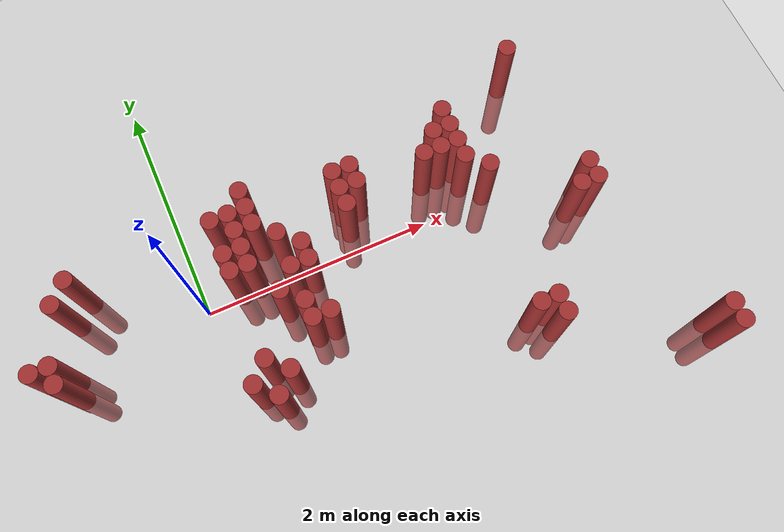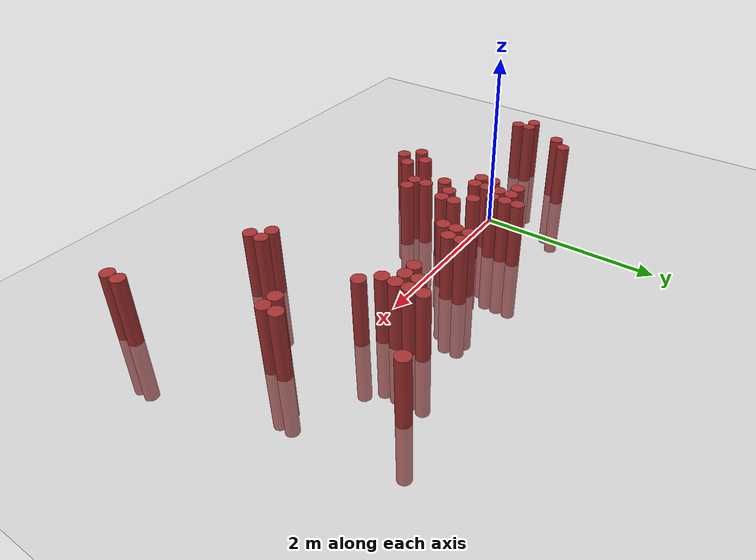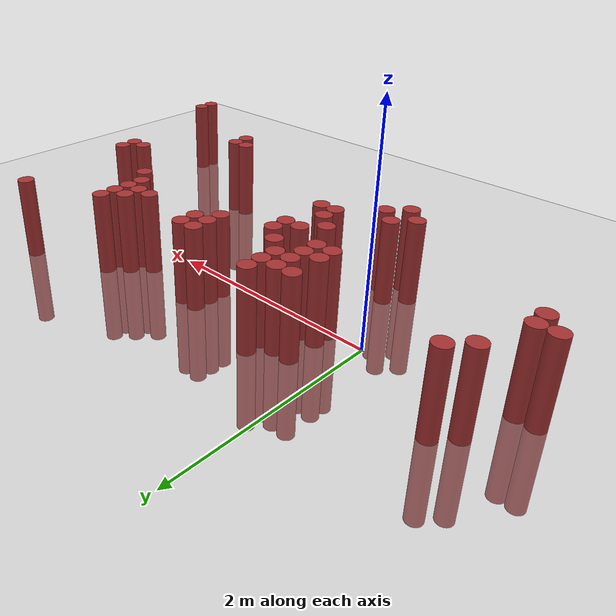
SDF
<sdf version="1.6">
 <world name="default">
  <model name="ground_plane">
   <static>1</static>
   <link name="link">
    <collision name="collision">
     <geometry><plane><normal>0 0 1</normal><size>100 100</size></plane></geometry>
     <surface><friction><ode><mu>100</mu><mu2>50</mu2></ode></friction></surface>
    </collision>
    <visual name="visual">
     <cast_shadows>0</cast_shadows>
     <geometry><plane><normal>0 0 1</normal><size>100 100</size></plane></geometry>
     <material>
      <script><uri>file://media/materials/scripts/gazebo.material</uri><name>Gazebo/Grey</name></script>
     </material>
    </visual>
   </link>
  </model>
  <model name="unit_cylinder_312">
   <static>1</static>
   <pose>-1.325000 -0.125000 0.000000 0.000000 0.000000 0.000000</pose>
   <link name="link">
    <inertial>
     <mass>1</mass>
     <inertia><ixx>0.145833</ixx><ixy>0</ixy><ixz>0</ixz><iyy>0.145833</iyy><iyz>0</iyz><izz>0.125</izz></inertia>
    </inertial>
    <collision name="collision">
     <geometry><cylinder><radius>0.075000</radius><length>1.5</length></cylinder></geometry>
    </collision>
    <visual name="visual">
     <geometry><cylinder><radius>0.075000</radius><length>1.5</length></cylinder></geometry>
     <material>
      <ambient>0.648000 0.192000 0.192000 1</ambient>
      <diffuse>0.648000 0.192000 0.192000 1</diffuse>
     </material>
     <material>
      <script><name>Gazebo/Grey</name><uri>file://media/materials/scripts/gazebo.material</uri></script>
     </material>
    </visual>
   </link>
  </model>
  <model name="unit_cylinder_318">
   <static>1</static>
   <pose>-1.175000 -0.275000 0.000000 0.000000 0.000000 0.000000</pose>
   <link name="link">
    <inertial>
     <mass>1</mass>
     <inertia><ixx>0.145833</ixx><ixy>0</ixy><ixz>0</ixz><iyy>0.145833</iyy><iyz>0</iyz><izz>0.125</izz></inertia>
    </inertial>
    <collision name="collision">
     <geometry><cylinder><radius>0.075000</radius><length>1.5</length></cylinder></geometry>
    </collision>
    <visual name="visual">
     <geometry><cylinder><radius>0.075000</radius><length>1.5</length></cylinder></geometry>
     <material>
      <ambient>0.648000 0.192000 0.192000 1</ambient>
      <diffuse>0.648000 0.192000 0.192000 1</diffuse>
     </material>
     <material>
      <script><name>Gazebo/Grey</name><uri>file://media/materials/scripts/gazebo.material</uri></script>
     </material>
    </visual>
   </link>
  </model>
  <model name="unit_cylinder_319">
   <static>1</static>
   <pose>-1.175000 -0.125000 0.000000 0.000000 0.000000 0.000000</pose>
   <link name="link">
    <inertial>
     <mass>1</mass>
     <inertia><ixx>0.145833</ixx><ixy>0</ixy><ixz>0</ixz><iyy>0.145833</iyy><iyz>0</iyz><izz>0.125</izz></inertia>
    </inertial>
    <collision name="collision">
     <geometry><cylinder><radius>0.075000</radius><length>1.5</length></cylinder></geometry>
    </collision>
    <visual name="visual">
     <geometry><cylinder><radius>0.075000</radius><length>1.5</length></cylinder></geometry>
     <material>
      <ambient>0.648000 0.192000 0.192000 1</ambient>
      <diffuse>0.648000 0.192000 0.192000 1</diffuse>
     </material>
     <material>
      <script><name>Gazebo/Grey</name><uri>file://media/materials/scripts/gazebo.material</uri></script>
     </material>
    </visual>
   </link>
  </model>
  <model name="unit_cylinder_325">
   <static>1</static>
   <pose>-1.025000 0.325000 0.000000 0.000000 0.000000 0.000000</pose>
   <link name="link">
    <inertial>
     <mass>1</mass>
     <inertia><ixx>0.145833</ixx><ixy>0</ixy><ixz>0</ixz><iyy>0.145833</iyy><iyz>0</iyz><izz>0.125</izz></inertia>
    </inertial>
    <collision name="collision">
     <geometry><cylinder><radius>0.075000</radius><length>1.5</length></cylinder></geometry>
    </collision>
    <visual name="visual">
     <geometry><cylinder><radius>0.075000</radius><length>1.5</length></cylinder></geometry>
     <material>
      <ambient>0.648000 0.192000 0.192000 1</ambient>
      <diffuse>0.648000 0.192000 0.192000 1</diffuse>
     </material>
     <material>
      <script><name>Gazebo/Grey</name><uri>file://media/materials/scripts/gazebo.material</uri></script>
     </material>
    </visual>
   </link>
  </model>
  <model name="unit_cylinder_330">
   <static>1</static>
   <pose>-0.875000 0.475000 0.000000 0.000000 0.000000 0.000000</pose>
   <link name="link">
    <inertial>
     <mass>1</mass>
     <inertia><ixx>0.145833</ixx><ixy>0</ixy><ixz>0</ixz><iyy>0.145833</iyy><iyz>0</iyz><izz>0.125</izz></inertia>
    </inertial>
    <collision name="collision">
     <geometry><cylinder><radius>0.075000</radius><length>1.5</length></cylinder></geometry>
    </collision>
    <visual name="visual">
     <geometry><cylinder><radius>0.075000</radius><length>1.5</length></cylinder></geometry>
     <material>
      <ambient>0.648000 0.192000 0.192000 1</ambient>
      <diffuse>0.648000 0.192000 0.192000 1</diffuse>
     </material>
     <material>
      <script><name>Gazebo/Grey</name><uri>file://media/materials/scripts/gazebo.material</uri></script>
     </material>
    </visual>
   </link>
  </model>
  <model name="unit_cylinder_356">
   <static>1</static>
   <pose>0.175000 -0.875000 0.000000 0.000000 0.000000 0.000000</pose>
   <link name="link">
    <inertial>
     <mass>1</mass>
     <inertia><ixx>0.145833</ixx><ixy>0</ixy><ixz>0</ixz><iyy>0.145833</iyy><iyz>0</iyz><izz>0.125</izz></inertia>
    </inertial>
    <collision name="collision">
     <geometry><cylinder><radius>0.075000</radius><length>1.5</length></cylinder></geometry>
    </collision>
    <visual name="visual">
     <geometry><cylinder><radius>0.075000</radius><length>1.5</length></cylinder></geometry>
     <material>
      <ambient>0.648000 0.192000 0.192000 1</ambient>
      <diffuse>0.648000 0.192000 0.192000 1</diffuse>
     </material>
     <material>
      <script><name>Gazebo/Grey</name><uri>file://media/materials/scripts/gazebo.material</uri></script>
     </material>
    </visual>
   </link>
  </model>
  <model name="unit_cylinder_360">
   <static>1</static>
   <pose>0.325000 -1.025000 0.000000 0.000000 0.000000 0.000000</pose>
   <link name="link">
    <inertial>
     <mass>1</mass>
     <inertia><ixx>0.145833</ixx><ixy>0</ixy><ixz>0</ixz><iyy>0.145833</iyy><iyz>0</iyz><izz>0.125</izz></inertia>
    </inertial>
    <collision name="collision">
     <geometry><cylinder><radius>0.075000</radius><length>1.5</length></cylinder></geometry>
    </collision>
    <visual name="visual">
     <geometry><cylinder><radius>0.075000</radius><length>1.5</length></cylinder></geometry>
     <material>
      <ambient>0.648000 0.192000 0.192000 1</ambient>
      <diffuse>0.648000 0.192000 0.192000 1</diffuse>
     </material>
     <material>
      <script><name>Gazebo/Grey</name><uri>file://media/materials/scripts/gazebo.material</uri></script>
     </material>
    </visual>
   </link>
  </model>
  <model name="unit_cylinder_361">
   <static>1</static>
   <pose>0.325000 -0.725000 0.000000 0.000000 0.000000 0.000000</pose>
   <link name="link">
    <inertial>
     <mass>1</mass>
     <inertia><ixx>0.145833</ixx><ixy>0</ixy><ixz>0</ixz><iyy>0.145833</iyy><iyz>0</iyz><izz>0.125</izz></inertia>
    </inertial>
    <collision name="collision">
     <geometry><cylinder><radius>0.075000</radius><length>1.5</length></cylinder></geometry>
    </collision>
    <visual name="visual">
     <geometry><cylinder><radius>0.075000</radius><length>1.5</length></cylinder></geometry>
     <material>
      <ambient>0.648000 0.192000 0.192000 1</ambient>
      <diffuse>0.648000 0.192000 0.192000 1</diffuse>
     </material>
     <material>
      <script><name>Gazebo/Grey</name><uri>file://media/materials/scripts/gazebo.material</uri></script>
     </material>
    </visual>
   </link>
  </model>
  <model name="unit_cylinder_362">
   <static>1</static>
   <pose>0.325000 0.025000 0.000000 0.000000 0.000000 0.000000</pose>
   <link name="link">
    <inertial>
     <mass>1</mass>
     <inertia><ixx>0.145833</ixx><ixy>0</ixy><ixz>0</ixz><iyy>0.145833</iyy><iyz>0</iyz><izz>0.125</izz></inertia>
    </inertial>
    <collision name="collision">
     <geometry><cylinder><radius>0.075000</radius><length>1.5</length></cylinder></geometry>
    </collision>
    <visual name="visual">
     <geometry><cylinder><radius>0.075000</radius><length>1.5</length></cylinder></geometry>
     <material>
      <ambient>0.648000 0.192000 0.192000 1</ambient>
      <diffuse>0.648000 0.192000 0.192000 1</diffuse>
     </material>
     <material>
      <script><name>Gazebo/Grey</name><uri>file://media/materials/scripts/gazebo.material</uri></script>
     </material>
    </visual>
   </link>
  </model>
  <model name="unit_cylinder_363">
   <static>1</static>
   <pose>0.325000 0.175000 0.000000 0.000000 0.000000 0.000000</pose>
   <link name="link">
    <inertial>
     <mass>1</mass>
     <inertia><ixx>0.145833</ixx><ixy>0</ixy><ixz>0</ixz><iyy>0.145833</iyy><iyz>0</iyz><izz>0.125</izz></inertia>
    </inertial>
    <collision name="collision">
     <geometry><cylinder><radius>0.075000</radius><length>1.5</length></cylinder></geometry>
    </collision>
    <visual name="visual">
     <geometry><cylinder><radius>0.075000</radius><length>1.5</length></cylinder></geometry>
     <material>
      <ambient>0.648000 0.192000 0.192000 1</ambient>
      <diffuse>0.648000 0.192000 0.192000 1</diffuse>
     </material>
     <material>
      <script><name>Gazebo/Grey</name><uri>file://media/materials/scripts/gazebo.material</uri></script>
     </material>
    </visual>
   </link>
  </model>
  <model name="unit_cylinder_364">
   <static>1</static>
   <pose>0.325000 0.475000 0.000000 0.000000 0.000000 0.000000</pose>
   <link name="link">
    <inertial>
     <mass>1</mass>
     <inertia><ixx>0.145833</ixx><ixy>0</ixy><ixz>0</ixz><iyy>0.145833</iyy><iyz>0</iyz><izz>0.125</izz></inertia>
    </inertial>
    <collision name="collision">
     <geometry><cylinder><radius>0.075000</radius><length>1.5</length></cylinder></geometry>
    </collision>
    <visual name="visual">
     <geometry><cylinder><radius>0.075000</radius><length>1.5</length></cylinder></geometry>
     <material>
      <ambient>0.648000 0.192000 0.192000 1</ambient>
      <diffuse>0.648000 0.192000 0.192000 1</diffuse>
     </material>
     <material>
      <script><name>Gazebo/Grey</name><uri>file://media/materials/scripts/gazebo.material</uri></script>
     </material>
    </visual>
   </link>
  </model>
  <model name="unit_cylinder_367">
   <static>1</static>
   <pose>0.475000 -0.875000 0.000000 0.000000 0.000000 0.000000</pose>
   <link name="link">
    <inertial>
     <mass>1</mass>
     <inertia><ixx>0.145833</ixx><ixy>0</ixy><ixz>0</ixz><iyy>0.145833</iyy><iyz>0</iyz><izz>0.125</izz></inertia>
    </inertial>
    <collision name="collision">
     <geometry><cylinder><radius>0.075000</radius><length>1.5</length></cylinder></geometry>
    </collision>
    <visual name="visual">
     <geometry><cylinder><radius>0.075000</radius><length>1.5</length></cylinder></geometry>
     <material>
      <ambient>0.648000 0.192000 0.192000 1</ambient>
      <diffuse>0.648000 0.192000 0.192000 1</diffuse>
     </material>
     <material>
      <script><name>Gazebo/Grey</name><uri>file://media/materials/scripts/gazebo.material</uri></script>
     </material>
    </visual>
   </link>
  </model>
  <model name="unit_cylinder_368">
   <static>1</static>
   <pose>0.475000 0.025000 0.000000 0.000000 0.000000 0.000000</pose>
   <link name="link">
    <inertial>
     <mass>1</mass>
     <inertia><ixx>0.145833</ixx><ixy>0</ixy><ixz>0</ixz><iyy>0.145833</iyy><iyz>0</iyz><izz>0.125</izz></inertia>
    </inertial>
    <collision name="collision">
     <geometry><cylinder><radius>0.075000</radius><length>1.5</length></cylinder></geometry>
    </collision>
    <visual name="visual">
     <geometry><cylinder><radius>0.075000</radius><length>1.5</length></cylinder></geometry>
     <material>
      <ambient>0.648000 0.192000 0.192000 1</ambient>
      <diffuse>0.648000 0.192000 0.192000 1</diffuse>
     </material>
     <material>
      <script><name>Gazebo/Grey</name><uri>file://media/materials/scripts/gazebo.material</uri></script>
     </material>
    </visual>
   </link>
  </model>
  <model name="unit_cylinder_369">
   <static>1</static>
   <pose>0.475000 0.175000 0.000000 0.000000 0.000000 0.000000</pose>
   <link name="link">
    <inertial>
     <mass>1</mass>
     <inertia><ixx>0.145833</ixx><ixy>0</ixy><ixz>0</ixz><iyy>0.145833</iyy><iyz>0</iyz><izz>0.125</izz></inertia>
    </inertial>
    <collision name="collision">
     <geometry><cylinder><radius>0.075000</radius><length>1.5</length></cylinder></geometry>
    </collision>
    <visual name="visual">
     <geometry><cylinder><radius>0.075000</radius><length>1.5</length></cylinder></geometry>
     <material>
      <ambient>0.648000 0.192000 0.192000 1</ambient>
      <diffuse>0.648000 0.192000 0.192000 1</diffuse>
     </material>
     <material>
      <script><name>Gazebo/Grey</name><uri>file://media/materials/scripts/gazebo.material</uri></script>
     </material>
    </visual>
   </link>
  </model>
  <model name="unit_cylinder_370">
   <static>1</static>
   <pose>0.475000 0.325000 0.000000 0.000000 0.000000 0.000000</pose>
   <link name="link">
    <inertial>
     <mass>1</mass>
     <inertia><ixx>0.145833</ixx><ixy>0</ixy><ixz>0</ixz><iyy>0.145833</iyy><iyz>0</iyz><izz>0.125</izz></inertia>
    </inertial>
    <collision name="collision">
     <geometry><cylinder><radius>0.075000</radius><length>1.5</length></cylinder></geometry>
    </collision>
    <visual name="visual">
     <geometry><cylinder><radius>0.075000</radius><length>1.5</length></cylinder></geometry>
     <material>
      <ambient>0.648000 0.192000 0.192000 1</ambient>
      <diffuse>0.648000 0.192000 0.192000 1</diffuse>
     </material>
     <material>
      <script><name>Gazebo/Grey</name><uri>file://media/materials/scripts/gazebo.material</uri></script>
     </material>
    </visual>
   </link>
  </model>
  <model name="unit_cylinder_371">
   <static>1</static>
   <pose>0.475000 0.475000 0.000000 0.000000 0.000000 0.000000</pose>
   <link name="link">
    <inertial>
     <mass>1</mass>
     <inertia><ixx>0.145833</ixx><ixy>0</ixy><ixz>0</ixz><iyy>0.145833</iyy><iyz>0</iyz><izz>0.125</izz></inertia>
    </inertial>
    <collision name="collision">
     <geometry><cylinder><radius>0.075000</radius><length>1.5</length></cylinder></geometry>
    </collision>
    <visual name="visual">
     <geometry><cylinder><radius>0.075000</radius><length>1.5</length></cylinder></geometry>
     <material>
      <ambient>0.648000 0.192000 0.192000 1</ambient>
      <diffuse>0.648000 0.192000 0.192000 1</diffuse>
     </material>
     <material>
      <script><name>Gazebo/Grey</name><uri>file://media/materials/scripts/gazebo.material</uri></script>
     </material>
    </visual>
   </link>
  </model>
  <model name="unit_cylinder_373">
   <static>1</static>
   <pose>0.625000 -0.275000 0.000000 0.000000 0.000000 0.000000</pose>
   <link name="link">
    <inertial>
     <mass>1</mass>
     <inertia><ixx>0.145833</ixx><ixy>0</ixy><ixz>0</ixz><iyy>0.145833</iyy><iyz>0</iyz><izz>0.125</izz></inertia>
    </inertial>
    <collision name="collision">
     <geometry><cylinder><radius>0.075000</radius><length>1.5</length></cylinder></geometry>
    </collision>
    <visual name="visual">
     <geometry><cylinder><radius>0.075000</radius><length>1.5</length></cylinder></geometry>
     <material>
      <ambient>0.648000 0.192000 0.192000 1</ambient>
      <diffuse>0.648000 0.192000 0.192000 1</diffuse>
     </material>
     <material>
      <script><name>Gazebo/Grey</name><uri>file://media/materials/scripts/gazebo.material</uri></script>
     </material>
    </visual>
   </link>
  </model>
  <model name="unit_cylinder_374">
   <static>1</static>
   <pose>0.625000 0.325000 0.000000 0.000000 0.000000 0.000000</pose>
   <link name="link">
    <inertial>
     <mass>1</mass>
     <inertia><ixx>0.145833</ixx><ixy>0</ixy><ixz>0</ixz><iyy>0.145833</iyy><iyz>0</iyz><izz>0.125</izz></inertia>
    </inertial>
    <collision name="collision">
     <geometry><cylinder><radius>0.075000</radius><length>1.5</length></cylinder></geometry>
    </collision>
    <visual name="visual">
     <geometry><cylinder><radius>0.075000</radius><length>1.5</length></cylinder></geometry>
     <material>
      <ambient>0.648000 0.192000 0.192000 1</ambient>
      <diffuse>0.648000 0.192000 0.192000 1</diffuse>
     </material>
     <material>
      <script><name>Gazebo/Grey</name><uri>file://media/materials/scripts/gazebo.material</uri></script>
     </material>
    </visual>
   </link>
  </model>
  <model name="unit_cylinder_375">
   <static>1</static>
   <pose>0.625000 0.475000 0.000000 0.000000 0.000000 0.000000</pose>
   <link name="link">
    <inertial>
     <mass>1</mass>
     <inertia><ixx>0.145833</ixx><ixy>0</ixy><ixz>0</ixz><iyy>0.145833</iyy><iyz>0</iyz><izz>0.125</izz></inertia>
    </inertial>
    <collision name="collision">
     <geometry><cylinder><radius>0.075000</radius><length>1.5</length></cylinder></geometry>
    </collision>
    <visual name="visual">
     <geometry><cylinder><radius>0.075000</radius><length>1.5</length></cylinder></geometry>
     <material>
      <ambient>0.648000 0.192000 0.192000 1</ambient>
      <diffuse>0.648000 0.192000 0.192000 1</diffuse>
     </material>
     <material>
      <script><name>Gazebo/Grey</name><uri>file://media/materials/scripts/gazebo.material</uri></script>
     </material>
    </visual>
   </link>
  </model>
  <model name="unit_cylinder_376">
   <static>1</static>
   <pose>0.625000 0.625000 0.000000 0.000000 0.000000 0.000000</pose>
   <link name="link">
    <inertial>
     <mass>1</mass>
     <inertia><ixx>0.145833</ixx><ixy>0</ixy><ixz>0</ixz><iyy>0.145833</iyy><iyz>0</iyz><izz>0.125</izz></inertia>
    </inertial>
    <collision name="collision">
     <geometry><cylinder><radius>0.075000</radius><length>1.5</length></cylinder></geometry>
    </collision>
    <visual name="visual">
     <geometry><cylinder><radius>0.075000</radius><length>1.5</length></cylinder></geometry>
     <material>
      <ambient>0.648000 0.192000 0.192000 1</ambient>
      <diffuse>0.648000 0.192000 0.192000 1</diffuse>
     </material>
     <material>
      <script><name>Gazebo/Grey</name><uri>file://media/materials/scripts/gazebo.material</uri></script>
     </material>
    </visual>
   </link>
  </model>
  <model name="unit_cylinder_380">
   <static>1</static>
   <pose>0.775000 -0.575000 0.000000 0.000000 0.000000 0.000000</pose>
   <link name="link">
    <inertial>
     <mass>1</mass>
     <inertia><ixx>0.145833</ixx><ixy>0</ixy><ixz>0</ixz><iyy>0.145833</iyy><iyz>0</iyz><izz>0.125</izz></inertia>
    </inertial>
    <collision name="collision">
     <geometry><cylinder><radius>0.075000</radius><length>1.5</length></cylinder></geometry>
    </collision>
    <visual name="visual">
     <geometry><cylinder><radius>0.075000</radius><length>1.5</length></cylinder></geometry>
     <material>
      <ambient>0.648000 0.192000 0.192000 1</ambient>
      <diffuse>0.648000 0.192000 0.192000 1</diffuse>
     </material>
     <material>
      <script><name>Gazebo/Grey</name><uri>file://media/materials/scripts/gazebo.material</uri></script>
     </material>
    </visual>
   </link>
  </model>
  <model name="unit_cylinder_381">
   <static>1</static>
   <pose>0.775000 -0.425000 0.000000 0.000000 0.000000 0.000000</pose>
   <link name="link">
    <inertial>
     <mass>1</mass>
     <inertia><ixx>0.145833</ixx><ixy>0</ixy><ixz>0</ixz><iyy>0.145833</iyy><iyz>0</iyz><izz>0.125</izz></inertia>
    </inertial>
    <collision name="collision">
     <geometry><cylinder><radius>0.075000</radius><length>1.5</length></cylinder></geometry>
    </collision>
    <visual name="visual">
     <geometry><cylinder><radius>0.075000</radius><length>1.5</length></cylinder></geometry>
     <material>
      <ambient>0.648000 0.192000 0.192000 1</ambient>
      <diffuse>0.648000 0.192000 0.192000 1</diffuse>
     </material>
     <material>
      <script><name>Gazebo/Grey</name><uri>file://media/materials/scripts/gazebo.material</uri></script>
     </material>
    </visual>
   </link>
  </model>
  <model name="unit_cylinder_382">
   <static>1</static>
   <pose>0.775000 -0.125000 0.000000 0.000000 0.000000 0.000000</pose>
   <link name="link">
    <inertial>
     <mass>1</mass>
     <inertia><ixx>0.145833</ixx><ixy>0</ixy><ixz>0</ixz><iyy>0.145833</iyy><iyz>0</iyz><izz>0.125</izz></inertia>
    </inertial>
    <collision name="collision">
     <geometry><cylinder><radius>0.075000</radius><length>1.5</length></cylinder></geometry>
    </collision>
    <visual name="visual">
     <geometry><cylinder><radius>0.075000</radius><length>1.5</length></cylinder></geometry>
     <material>
      <ambient>0.648000 0.192000 0.192000 1</ambient>
      <diffuse>0.648000 0.192000 0.192000 1</diffuse>
     </material>
     <material>
      <script><name>Gazebo/Grey</name><uri>file://media/materials/scripts/gazebo.material</uri></script>
     </material>
    </visual>
   </link>
  </model>
  <model name="unit_cylinder_383">
   <static>1</static>
   <pose>0.775000 0.175000 0.000000 0.000000 0.000000 0.000000</pose>
   <link name="link">
    <inertial>
     <mass>1</mass>
     <inertia><ixx>0.145833</ixx><ixy>0</ixy><ixz>0</ixz><iyy>0.145833</iyy><iyz>0</iyz><izz>0.125</izz></inertia>
    </inertial>
    <collision name="collision">
     <geometry><cylinder><radius>0.075000</radius><length>1.5</length></cylinder></geometry>
    </collision>
    <visual name="visual">
     <geometry><cylinder><radius>0.075000</radius><length>1.5</length></cylinder></geometry>
     <material>
      <ambient>0.648000 0.192000 0.192000 1</ambient>
      <diffuse>0.648000 0.192000 0.192000 1</diffuse>
     </material>
     <material>
      <script><name>Gazebo/Grey</name><uri>file://media/materials/scripts/gazebo.material</uri></script>
     </material>
    </visual>
   </link>
  </model>
  <model name="unit_cylinder_387">
   <static>1</static>
   <pose>0.925000 -0.575000 0.000000 0.000000 0.000000 0.000000</pose>
   <link name="link">
    <inertial>
     <mass>1</mass>
     <inertia><ixx>0.145833</ixx><ixy>0</ixy><ixz>0</ixz><iyy>0.145833</iyy><iyz>0</iyz><izz>0.125</izz></inertia>
    </inertial>
    <collision name="collision">
     <geometry><cylinder><radius>0.075000</radius><length>1.5</length></cylinder></geometry>
    </collision>
    <visual name="visual">
     <geometry><cylinder><radius>0.075000</radius><length>1.5</length></cylinder></geometry>
     <material>
      <ambient>0.648000 0.192000 0.192000 1</ambient>
      <diffuse>0.648000 0.192000 0.192000 1</diffuse>
     </material>
     <material>
      <script><name>Gazebo/Grey</name><uri>file://media/materials/scripts/gazebo.material</uri></script>
     </material>
    </visual>
   </link>
  </model>
  <model name="unit_cylinder_388">
   <static>1</static>
   <pose>0.925000 -0.125000 0.000000 0.000000 0.000000 0.000000</pose>
   <link name="link">
    <inertial>
     <mass>1</mass>
     <inertia><ixx>0.145833</ixx><ixy>0</ixy><ixz>0</ixz><iyy>0.145833</iyy><iyz>0</iyz><izz>0.125</izz></inertia>
    </inertial>
    <collision name="collision">
     <geometry><cylinder><radius>0.075000</radius><length>1.5</length></cylinder></geometry>
    </collision>
    <visual name="visual">
     <geometry><cylinder><radius>0.075000</radius><length>1.5</length></cylinder></geometry>
     <material>
      <ambient>0.648000 0.192000 0.192000 1</ambient>
      <diffuse>0.648000 0.192000 0.192000 1</diffuse>
     </material>
     <material>
      <script><name>Gazebo/Grey</name><uri>file://media/materials/scripts/gazebo.material</uri></script>
     </material>
    </visual>
   </link>
  </model>
  <model name="unit_cylinder_389">
   <static>1</static>
   <pose>0.925000 0.025000 0.000000 0.000000 0.000000 0.000000</pose>
   <link name="link">
    <inertial>
     <mass>1</mass>
     <inertia><ixx>0.145833</ixx><ixy>0</ixy><ixz>0</ixz><iyy>0.145833</iyy><iyz>0</iyz><izz>0.125</izz></inertia>
    </inertial>
    <collision name="collision">
     <geometry><cylinder><radius>0.075000</radius><length>1.5</length></cylinder></geometry>
    </collision>
    <visual name="visual">
     <geometry><cylinder><radius>0.075000</radius><length>1.5</length></cylinder></geometry>
     <material>
      <ambient>0.648000 0.192000 0.192000 1</ambient>
      <diffuse>0.648000 0.192000 0.192000 1</diffuse>
     </material>
     <material>
      <script><name>Gazebo/Grey</name><uri>file://media/materials/scripts/gazebo.material</uri></script>
     </material>
    </visual>
   </link>
  </model>
  <model name="unit_cylinder_401">
   <static>1</static>
   <pose>1.375000 0.175000 0.000000 0.000000 0.000000 0.000000</pose>
   <link name="link">
    <inertial>
     <mass>1</mass>
     <inertia><ixx>0.145833</ixx><ixy>0</ixy><ixz>0</ixz><iyy>0.145833</iyy><iyz>0</iyz><izz>0.125</izz></inertia>
    </inertial>
    <collision name="collision">
     <geometry><cylinder><radius>0.075000</radius><length>1.5</length></cylinder></geometry>
    </collision>
    <visual name="visual">
     <geometry><cylinder><radius>0.075000</radius><length>1.5</length></cylinder></geometry>
     <material>
      <ambient>0.648000 0.192000 0.192000 1</ambient>
      <diffuse>0.648000 0.192000 0.192000 1</diffuse>
     </material>
     <material>
      <script><name>Gazebo/Grey</name><uri>file://media/materials/scripts/gazebo.material</uri></script>
     </material>
    </visual>
   </link>
  </model>
  <model name="unit_cylinder_402">
   <static>1</static>
   <pose>1.375000 0.325000 0.000000 0.000000 0.000000 0.000000</pose>
   <link name="link">
    <inertial>
     <mass>1</mass>
     <inertia><ixx>0.145833</ixx><ixy>0</ixy><ixz>0</ixz><iyy>0.145833</iyy><iyz>0</iyz><izz>0.125</izz></inertia>
    </inertial>
    <collision name="collision">
     <geometry><cylinder><radius>0.075000</radius><length>1.5</length></cylinder></geometry>
    </collision>
    <visual name="visual">
     <geometry><cylinder><radius>0.075000</radius><length>1.5</length></cylinder></geometry>
     <material>
      <ambient>0.648000 0.192000 0.192000 1</ambient>
      <diffuse>0.648000 0.192000 0.192000 1</diffuse>
     </material>
     <material>
      <script><name>Gazebo/Grey</name><uri>file://media/materials/scripts/gazebo.material</uri></script>
     </material>
    </visual>
   </link>
  </model>
  <model name="unit_cylinder_403">
   <static>1</static>
   <pose>1.375000 0.475000 0.000000 0.000000 0.000000 0.000000</pose>
   <link name="link">
    <inertial>
     <mass>1</mass>
     <inertia><ixx>0.145833</ixx><ixy>0</ixy><ixz>0</ixz><iyy>0.145833</iyy><iyz>0</iyz><izz>0.125</izz></inertia>
    </inertial>
    <collision name="collision">
     <geometry><cylinder><radius>0.075000</radius><length>1.5</length></cylinder></geometry>
    </collision>
    <visual name="visual">
     <geometry><cylinder><radius>0.075000</radius><length>1.5</length></cylinder></geometry>
     <material>
      <ambient>0.648000 0.192000 0.192000 1</ambient>
      <diffuse>0.648000 0.192000 0.192000 1</diffuse>
     </material>
     <material>
      <script><name>Gazebo/Grey</name><uri>file://media/materials/scripts/gazebo.material</uri></script>
     </material>
    </visual>
   </link>
  </model>
  <model name="unit_cylinder_404">
   <static>1</static>
   <pose>1.525000 0.325000 0.000000 0.000000 0.000000 0.000000</pose>
   <link name="link">
    <inertial>
     <mass>1</mass>
     <inertia><ixx>0.145833</ixx><ixy>0</ixy><ixz>0</ixz><iyy>0.145833</iyy><iyz>0</iyz><izz>0.125</izz></inertia>
    </inertial>
    <collision name="collision">
     <geometry><cylinder><radius>0.075000</radius><length>1.5</length></cylinder></geometry>
    </collision>
    <visual name="visual">
     <geometry><cylinder><radius>0.075000</radius><length>1.5</length></cylinder></geometry>
     <material>
      <ambient>0.648000 0.192000 0.192000 1</ambient>
      <diffuse>0.648000 0.192000 0.192000 1</diffuse>
     </material>
     <material>
      <script><name>Gazebo/Grey</name><uri>file://media/materials/scripts/gazebo.material</uri></script>
     </material>
    </visual>
   </link>
  </model>
  <model name="unit_cylinder_405">
   <static>1</static>
   <pose>1.525000 0.475000 0.000000 0.000000 0.000000 0.000000</pose>
   <link name="link">
    <inertial>
     <mass>1</mass>
     <inertia><ixx>0.145833</ixx><ixy>0</ixy><ixz>0</ixz><iyy>0.145833</iyy><iyz>0</iyz><izz>0.125</izz></inertia>
    </inertial>
    <collision name="collision">
     <geometry><cylinder><radius>0.075000</radius><length>1.5</length></cylinder></geometry>
    </collision>
    <visual name="visual">
     <geometry><cylinder><radius>0.075000</radius><length>1.5</length></cylinder></geometry>
     <material>
      <ambient>0.648000 0.192000 0.192000 1</ambient>
      <diffuse>0.648000 0.192000 0.192000 1</diffuse>
     </material>
     <material>
      <script><name>Gazebo/Grey</name><uri>file://media/materials/scripts/gazebo.material</uri></script>
     </material>
    </visual>
   </link>
  </model>
  <model name="unit_cylinder_409">
   <static>1</static>
   <pose>2.125000 0.325000 0.000000 0.000000 0.000000 0.000000</pose>
   <link name="link">
    <inertial>
     <mass>1</mass>
     <inertia><ixx>0.145833</ixx><ixy>0</ixy><ixz>0</ixz><iyy>0.145833</iyy><iyz>0</iyz><izz>0.125</izz></inertia>
    </inertial>
    <collision name="collision">
     <geometry><cylinder><radius>0.075000</radius><length>1.5</length></cylinder></geometry>
    </collision>
    <visual name="visual">
     <geometry><cylinder><radius>0.075000</radius><length>1.5</length></cylinder></geometry>
     <material>
      <ambient>0.648000 0.192000 0.192000 1</ambient>
      <diffuse>0.648000 0.192000 0.192000 1</diffuse>
     </material>
     <material>
      <script><name>Gazebo/Grey</name><uri>file://media/materials/scripts/gazebo.material</uri></script>
     </material>
    </visual>
   </link>
  </model>
  <model name="unit_cylinder_412">
   <static>1</static>
   <pose>2.275000 0.325000 0.000000 0.000000 0.000000 0.000000</pose>
   <link name="link">
    <inertial>
     <mass>1</mass>
     <inertia><ixx>0.145833</ixx><ixy>0</ixy><ixz>0</ixz><iyy>0.145833</iyy><iyz>0</iyz><izz>0.125</izz></inertia>
    </inertial>
    <collision name="collision">
     <geometry><cylinder><radius>0.075000</radius><length>1.5</length></cylinder></geometry>
    </collision>
    <visual name="visual">
     <geometry><cylinder><radius>0.075000</radius><length>1.5</length></cylinder></geometry>
     <material>
      <ambient>0.648000 0.192000 0.192000 1</ambient>
      <diffuse>0.648000 0.192000 0.192000 1</diffuse>
     </material>
     <material>
      <script><name>Gazebo/Grey</name><uri>file://media/materials/scripts/gazebo.material</uri></script>
     </material>
    </visual>
   </link>
  </model>
  <model name="unit_cylinder_413">
   <static>1</static>
   <pose>2.275000 0.475000 0.000000 0.000000 0.000000 0.000000</pose>
   <link name="link">
    <inertial>
     <mass>1</mass>
     <inertia><ixx>0.145833</ixx><ixy>0</ixy><ixz>0</ixz><iyy>0.145833</iyy><iyz>0</iyz><izz>0.125</izz></inertia>
    </inertial>
    <collision name="collision">
     <geometry><cylinder><radius>0.075000</radius><length>1.5</length></cylinder></geometry>
    </collision>
    <visual name="visual">
     <geometry><cylinder><radius>0.075000</radius><length>1.5</length></cylinder></geometry>
     <material>
      <ambient>0.648000 0.192000 0.192000 1</ambient>
      <diffuse>0.648000 0.192000 0.192000 1</diffuse>
     </material>
     <material>
      <script><name>Gazebo/Grey</name><uri>file://media/materials/scripts/gazebo.material</uri></script>
     </material>
    </visual>
   </link>
  </model>
  <model name="unit_cylinder_414">
   <static>1</static>
   <pose>2.425000 -1.175000 0.000000 0.000000 0.000000 0.000000</pose>
   <link name="link">
    <inertial>
     <mass>1</mass>
     <inertia><ixx>0.145833</ixx><ixy>0</ixy><ixz>0</ixz><iyy>0.145833</iyy><iyz>0</iyz><izz>0.125</izz></inertia>
    </inertial>
    <collision name="collision">
     <geometry><cylinder><radius>0.075000</radius><length>1.5</length></cylinder></geometry>
    </collision>
    <visual name="visual">
     <geometry><cylinder><radius>0.075000</radius><length>1.5</length></cylinder></geometry>
     <material>
      <ambient>0.648000 0.192000 0.192000 1</ambient>
      <diffuse>0.648000 0.192000 0.192000 1</diffuse>
     </material>
     <material>
      <script><name>Gazebo/Grey</name><uri>file://media/materials/scripts/gazebo.material</uri></script>
     </material>
    </visual>
   </link>
  </model>
  <model name="unit_cylinder_415">
   <static>1</static>
   <pose>2.425000 0.175000 0.000000 0.000000 0.000000 0.000000</pose>
   <link name="link">
    <inertial>
     <mass>1</mass>
     <inertia><ixx>0.145833</ixx><ixy>0</ixy><ixz>0</ixz><iyy>0.145833</iyy><iyz>0</iyz><izz>0.125</izz></inertia>
    </inertial>
    <collision name="collision">
     <geometry><cylinder><radius>0.075000</radius><length>1.5</length></cylinder></geometry>
    </collision>
    <visual name="visual">
     <geometry><cylinder><radius>0.075000</radius><length>1.5</length></cylinder></geometry>
     <material>
      <ambient>0.648000 0.192000 0.192000 1</ambient>
      <diffuse>0.648000 0.192000 0.192000 1</diffuse>
     </material>
     <material>
      <script><name>Gazebo/Grey</name><uri>file://media/materials/scripts/gazebo.material</uri></script>
     </material>
    </visual>
   </link>
  </model>
  <model name="unit_cylinder_416">
   <static>1</static>
   <pose>2.425000 0.325000 0.000000 0.000000 0.000000 0.000000</pose>
   <link name="link">
    <inertial>
     <mass>1</mass>
     <inertia><ixx>0.145833</ixx><ixy>0</ixy><ixz>0</ixz><iyy>0.145833</iyy><iyz>0</iyz><izz>0.125</izz></inertia>
    </inertial>
    <collision name="collision">
     <geometry><cylinder><radius>0.075000</radius><length>1.5</length></cylinder></geometry>
    </collision>
    <visual name="visual">
     <geometry><cylinder><radius>0.075000</radius><length>1.5</length></cylinder></geometry>
     <material>
      <ambient>0.648000 0.192000 0.192000 1</ambient>
      <diffuse>0.648000 0.192000 0.192000 1</diffuse>
     </material>
     <material>
      <script><name>Gazebo/Grey</name><uri>file://media/materials/scripts/gazebo.material</uri></script>
     </material>
    </visual>
   </link>
  </model>
  <model name="unit_cylinder_417">
   <static>1</static>
   <pose>2.425000 0.475000 0.000000 0.000000 0.000000 0.000000</pose>
   <link name="link">
    <inertial>
     <mass>1</mass>
     <inertia><ixx>0.145833</ixx><ixy>0</ixy><ixz>0</ixz><iyy>0.145833</iyy><iyz>0</iyz><izz>0.125</izz></inertia>
    </inertial>
    <collision name="collision">
     <geometry><cylinder><radius>0.075000</radius><length>1.5</length></cylinder></geometry>
    </collision>
    <visual name="visual">
     <geometry><cylinder><radius>0.075000</radius><length>1.5</length></cylinder></geometry>
     <material>
      <ambient>0.648000 0.192000 0.192000 1</ambient>
      <diffuse>0.648000 0.192000 0.192000 1</diffuse>
     </material>
     <material>
      <script><name>Gazebo/Grey</name><uri>file://media/materials/scripts/gazebo.material</uri></script>
     </material>
    </visual>
   </link>
  </model>
  <model name="unit_cylinder_418">
   <static>1</static>
   <pose>2.425000 0.625000 0.000000 0.000000 0.000000 0.000000</pose>
   <link name="link">
    <inertial>
     <mass>1</mass>
     <inertia><ixx>0.145833</ixx><ixy>0</ixy><ixz>0</ixz><iyy>0.145833</iyy><iyz>0</iyz><izz>0.125</izz></inertia>
    </inertial>
    <collision name="collision">
     <geometry><cylinder><radius>0.075000</radius><length>1.5</length></cylinder></geometry>
    </collision>
    <visual name="visual">
     <geometry><cylinder><radius>0.075000</radius><length>1.5</length></cylinder></geometry>
     <material>
      <ambient>0.648000 0.192000 0.192000 1</ambient>
      <diffuse>0.648000 0.192000 0.192000 1</diffuse>
     </material>
     <material>
      <script><name>Gazebo/Grey</name><uri>file://media/materials/scripts/gazebo.material</uri></script>
     </material>
    </visual>
   </link>
  </model>
  <model name="unit_cylinder_419">
   <static>1</static>
   <pose>2.575000 -1.325000 0.000000 0.000000 0.000000 0.000000</pose>
   <link name="link">
    <inertial>
     <mass>1</mass>
     <inertia><ixx>0.145833</ixx><ixy>0</ixy><ixz>0</ixz><iyy>0.145833</iyy><iyz>0</iyz><izz>0.125</izz></inertia>
    </inertial>
    <collision name="collision">
     <geometry><cylinder><radius>0.075000</radius><length>1.5</length></cylinder></geometry>
    </collision>
    <visual name="visual">
     <geometry><cylinder><radius>0.075000</radius><length>1.5</length></cylinder></geometry>
     <material>
      <ambient>0.648000 0.192000 0.192000 1</ambient>
      <diffuse>0.648000 0.192000 0.192000 1</diffuse>
     </material>
     <material>
      <script><name>Gazebo/Grey</name><uri>file://media/materials/scripts/gazebo.material</uri></script>
     </material>
    </visual>
   </link>
  </model>
  <model name="unit_cylinder_420">
   <static>1</static>
   <pose>2.575000 -1.175000 0.000000 0.000000 0.000000 0.000000</pose>
   <link name="link">
    <inertial>
     <mass>1</mass>
     <inertia><ixx>0.145833</ixx><ixy>0</ixy><ixz>0</ixz><iyy>0.145833</iyy><iyz>0</iyz><izz>0.125</izz></inertia>
    </inertial>
    <collision name="collision">
     <geometry><cylinder><radius>0.075000</radius><length>1.5</length></cylinder></geometry>
    </collision>
    <visual name="visual">
     <geometry><cylinder><radius>0.075000</radius><length>1.5</length></cylinder></geometry>
     <material>
      <ambient>0.648000 0.192000 0.192000 1</ambient>
      <diffuse>0.648000 0.192000 0.192000 1</diffuse>
     </material>
     <material>
      <script><name>Gazebo/Grey</name><uri>file://media/materials/scripts/gazebo.material</uri></script>
     </material>
    </visual>
   </link>
  </model>
  <model name="unit_cylinder_421">
   <static>1</static>
   <pose>2.575000 0.025000 0.000000 0.000000 0.000000 0.000000</pose>
   <link name="link">
    <inertial>
     <mass>1</mass>
     <inertia><ixx>0.145833</ixx><ixy>0</ixy><ixz>0</ixz><iyy>0.145833</iyy><iyz>0</iyz><izz>0.125</izz></inertia>
    </inertial>
    <collision name="collision">
     <geometry><cylinder><radius>0.075000</radius><length>1.5</length></cylinder></geometry>
    </collision>
    <visual name="visual">
     <geometry><cylinder><radius>0.075000</radius><length>1.5</length></cylinder></geometry>
     <material>
      <ambient>0.648000 0.192000 0.192000 1</ambient>
      <diffuse>0.648000 0.192000 0.192000 1</diffuse>
     </material>
     <material>
      <script><name>Gazebo/Grey</name><uri>file://media/materials/scripts/gazebo.material</uri></script>
     </material>
    </visual>
   </link>
  </model>
  <model name="unit_cylinder_424">
   <static>1</static>
   <pose>3.175000 -0.425000 0.000000 0.000000 0.000000 0.000000</pose>
   <link name="link">
    <inertial>
     <mass>1</mass>
     <inertia><ixx>0.145833</ixx><ixy>0</ixy><ixz>0</ixz><iyy>0.145833</iyy><iyz>0</iyz><izz>0.125</izz></inertia>
    </inertial>
    <collision name="collision">
     <geometry><cylinder><radius>0.075000</radius><length>1.5</length></cylinder></geometry>
    </collision>
    <visual name="visual">
     <geometry><cylinder><radius>0.075000</radius><length>1.5</length></cylinder></geometry>
     <material>
      <ambient>0.648000 0.192000 0.192000 1</ambient>
      <diffuse>0.648000 0.192000 0.192000 1</diffuse>
     </material>
     <material>
      <script><name>Gazebo/Grey</name><uri>file://media/materials/scripts/gazebo.material</uri></script>
     </material>
    </visual>
   </link>
  </model>
  <model name="unit_cylinder_425">
   <static>1</static>
   <pose>3.175000 0.925000 0.000000 0.000000 0.000000 0.000000</pose>
   <link name="link">
    <inertial>
     <mass>1</mass>
     <inertia><ixx>0.145833</ixx><ixy>0</ixy><ixz>0</ixz><iyy>0.145833</iyy><iyz>0</iyz><izz>0.125</izz></inertia>
    </inertial>
    <collision name="collision">
     <geometry><cylinder><radius>0.075000</radius><length>1.5</length></cylinder></geometry>
    </collision>
    <visual name="visual">
     <geometry><cylinder><radius>0.075000</radius><length>1.5</length></cylinder></geometry>
     <material>
      <ambient>0.648000 0.192000 0.192000 1</ambient>
      <diffuse>0.648000 0.192000 0.192000 1</diffuse>
     </material>
     <material>
      <script><name>Gazebo/Grey</name><uri>file://media/materials/scripts/gazebo.material</uri></script>
     </material>
    </visual>
   </link>
  </model>
  <model name="unit_cylinder_428">
   <static>1</static>
   <pose>3.325000 -0.425000 0.000000 0.000000 0.000000 0.000000</pose>
   <link name="link">
    <inertial>
     <mass>1</mass>
     <inertia><ixx>0.145833</ixx><ixy>0</ixy><ixz>0</ixz><iyy>0.145833</iyy><iyz>0</iyz><izz>0.125</izz></inertia>
    </inertial>
    <collision name="collision">
     <geometry><cylinder><radius>0.075000</radius><length>1.5</length></cylinder></geometry>
    </collision>
    <visual name="visual">
     <geometry><cylinder><radius>0.075000</radius><length>1.5</length></cylinder></geometry>
     <material>
      <ambient>0.648000 0.192000 0.192000 1</ambient>
      <diffuse>0.648000 0.192000 0.192000 1</diffuse>
     </material>
     <material>
      <script><name>Gazebo/Grey</name><uri>file://media/materials/scripts/gazebo.material</uri></script>
     </material>
    </visual>
   </link>
  </model>
  <model name="unit_cylinder_429">
   <static>1</static>
   <pose>3.325000 -0.275000 0.000000 0.000000 0.000000 0.000000</pose>
   <link name="link">
    <inertial>
     <mass>1</mass>
     <inertia><ixx>0.145833</ixx><ixy>0</ixy><ixz>0</ixz><iyy>0.145833</iyy><iyz>0</iyz><izz>0.125</izz></inertia>
    </inertial>
    <collision name="collision">
     <geometry><cylinder><radius>0.075000</radius><length>1.5</length></cylinder></geometry>
    </collision>
    <visual name="visual">
     <geometry><cylinder><radius>0.075000</radius><length>1.5</length></cylinder></geometry>
     <material>
      <ambient>0.648000 0.192000 0.192000 1</ambient>
      <diffuse>0.648000 0.192000 0.192000 1</diffuse>
     </material>
     <material>
      <script><name>Gazebo/Grey</name><uri>file://media/materials/scripts/gazebo.material</uri></script>
     </material>
    </visual>
   </link>
  </model>
  <model name="unit_cylinder_432">
   <static>1</static>
   <pose>3.775000 -1.925000 0.000000 0.000000 0.000000 0.000000</pose>
   <link name="link">
    <inertial>
     <mass>1</mass>
     <inertia><ixx>0.145833</ixx><ixy>0</ixy><ixz>0</ixz><iyy>0.145833</iyy><iyz>0</iyz><izz>0.125</izz></inertia>
    </inertial>
    <collision name="collision">
     <geometry><cylinder><radius>0.075000</radius><length>1.5</length></cylinder></geometry>
    </collision>
    <visual name="visual">
     <geometry><cylinder><radius>0.075000</radius><length>1.5</length></cylinder></geometry>
     <material>
      <ambient>0.648000 0.192000 0.192000 1</ambient>
      <diffuse>0.648000 0.192000 0.192000 1</diffuse>
     </material>
     <material>
      <script><name>Gazebo/Grey</name><uri>file://media/materials/scripts/gazebo.material</uri></script>
     </material>
    </visual>
   </link>
  </model>
  <model name="unit_cylinder_433">
   <static>1</static>
   <pose>3.775000 -1.775000 0.000000 0.000000 0.000000 0.000000</pose>
   <link name="link">
    <inertial>
     <mass>1</mass>
     <inertia><ixx>0.145833</ixx><ixy>0</ixy><ixz>0</ixz><iyy>0.145833</iyy><iyz>0</iyz><izz>0.125</izz></inertia>
    </inertial>
    <collision name="collision">
     <geometry><cylinder><radius>0.075000</radius><length>1.5</length></cylinder></geometry>
    </collision>
    <visual name="visual">
     <geometry><cylinder><radius>0.075000</radius><length>1.5</length></cylinder></geometry>
     <material>
      <ambient>0.648000 0.192000 0.192000 1</ambient>
      <diffuse>0.648000 0.192000 0.192000 1</diffuse>
     </material>
     <material>
      <script><name>Gazebo/Grey</name><uri>file://media/materials/scripts/gazebo.material</uri></script>
     </material>
    </visual>
   </link>
  </model>
 </world>
</sdf>
